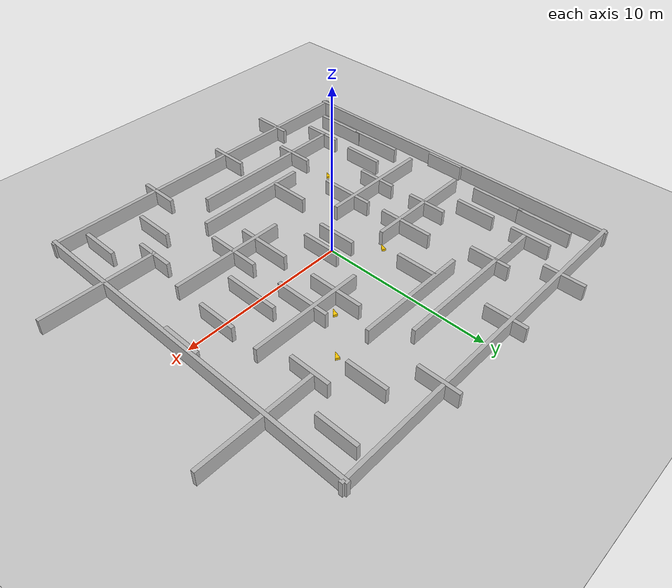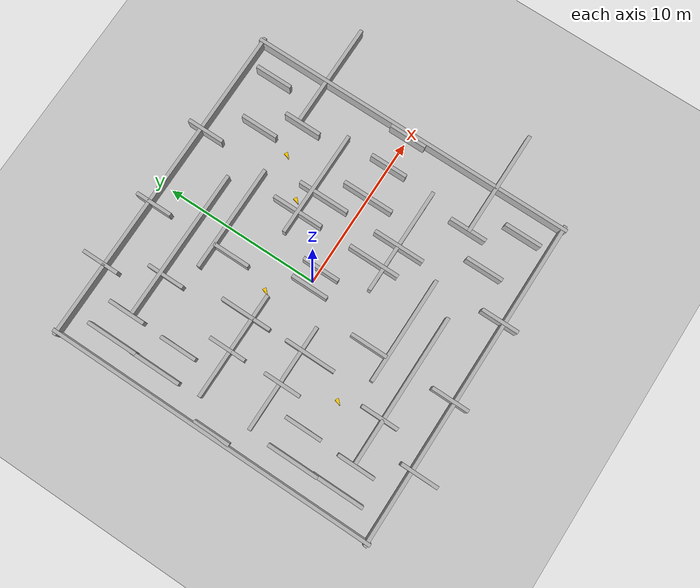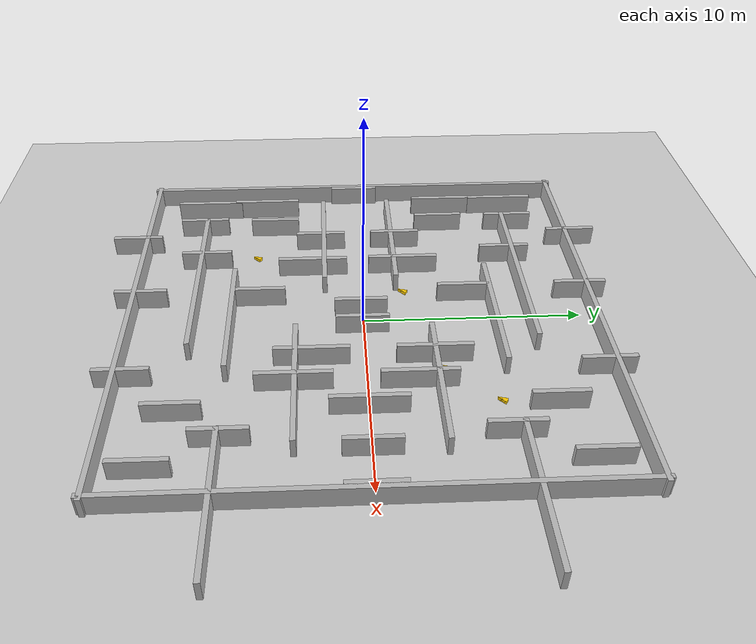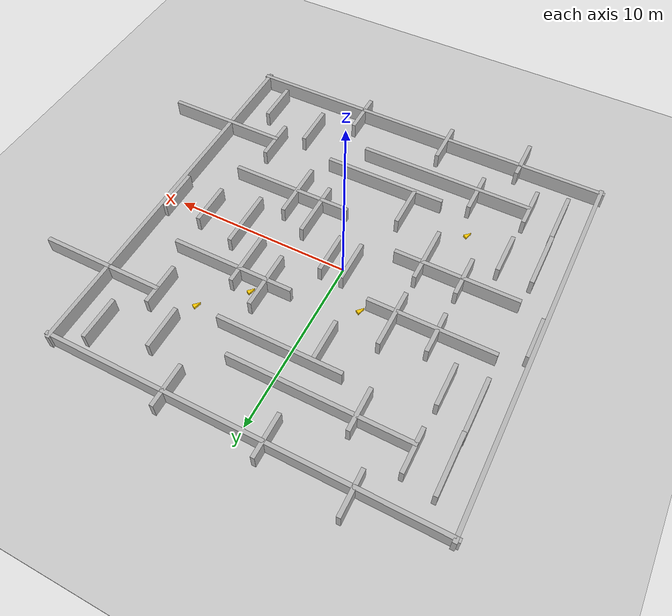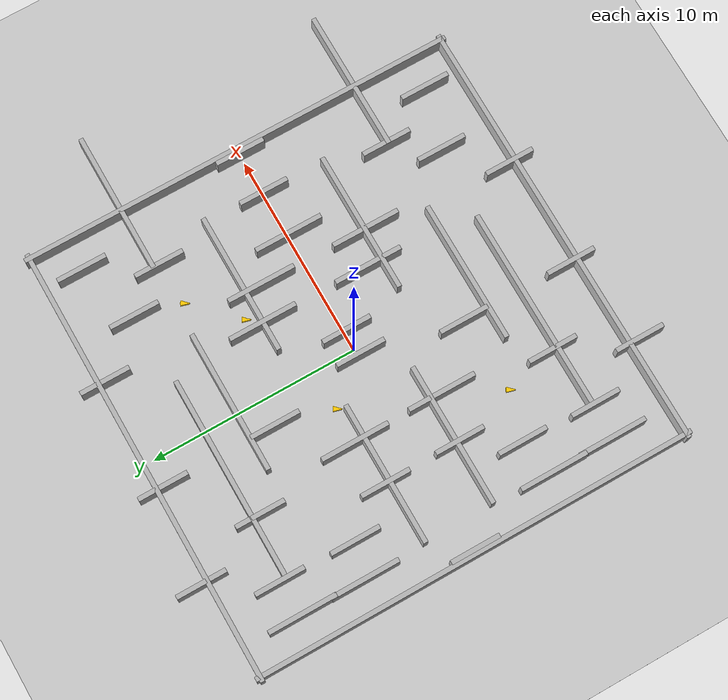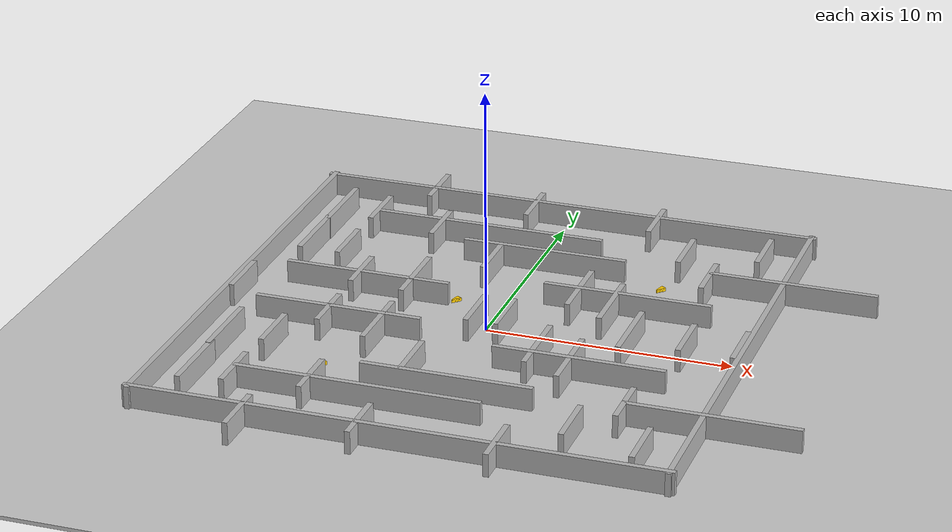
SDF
<sdf version="1.10">
  <world name="pac_mouse_maze">
    <model name="maze">
      <static>true</static>
      <scale>50 50 50</scale>
    <physics name="1ms" type="ignored">
      <max_step_size>0.001</max_step_size>
      <real_time_factor>1</real_time_factor>
      <real_time_update_rate>1000</real_time_update_rate>
    </physics>
    <plugin name="gz::sim::systems::Physics" filename="gz-sim-physics-system" />
    <plugin name="gz::sim::systems::UserCommands" filename="gz-sim-user-commands-system" />
    <plugin name="gz::sim::systems::SceneBroadcaster" filename="gz-sim-scene-broadcaster-system" />
    <plugin name="gz::sim::systems::Sensors" filename="gz-sim-sensors-system">
      <render_engine>ogre2</render_engine>
    </plugin>
    <gravity>0 0 -9.8000000000000007</gravity>
    <magnetic_field>5.5644999999999998e-06 2.2875799999999999e-05 -4.2388400000000002e-05</magnetic_field>
    <atmosphere type="adiabatic" />
    <scene>
      <ambient>0.400000006 0.400000006 0.400000006 1</ambient>
      <background>0.699999988 0.699999988 0.699999988 1</background>
      <shadows>true</shadows>
    </scene>
    <model name="ground_plane">
      <static>true</static>
      <link name="link">
        <collision name="collision">
          <geometry>
            <plane>
              <normal>0 0 1</normal>
              <size>150.0 150.0</size>
            </plane>
          </geometry>
          <surface>
            <friction>
              <ode />
            </friction>
            <bounce />
            <contact />
          </surface>
        </collision>
        <visual name="visual">
          <geometry>
            <plane>
              <normal>0 0 1</normal>
              <size>150.0 150.0</size>
            </plane>
          </geometry>
          <material>
            <ambient>0.800000012 0.800000012 0.800000012 1</ambient>
            <diffuse>0.800000012 0.800000012 0.800000012 1</diffuse>
          </material>
        </visual>
        <pose>0.0 0.0 0.0 0.0 0.0 0.0</pose>
        <inertial>
          <pose>0.0 0.0 0.0 0.0 0.0 0.0</pose>
          <mass>1</mass>
          <inertia>
            <ixx>1</ixx>
            <ixy>0</ixy>
            <ixz>0</ixz>
            <iyy>1</iyy>
            <iyz>0</iyz>
            <izz>1</izz>
          </inertia>
        </inertial>
        <enable_wind>false</enable_wind>
      </link>
      <pose>0.0 0.0 0.0 0.0 0.0 0.0</pose>
      <self_collide>false</self_collide>
    </model>
    <model name="wall_n">
      <static>true</static>
      <link name="l">
        <pose>0.0 10.5 0.5 0.0 0.0 0.0</pose>
        <collision name="c">
          <geometry>
            <box>
              <size>21.450000000000003 0.22499999999999998 1.0</size>
            </box>
          </geometry>
          <surface>
            <friction>
              <ode />
            </friction>
            <bounce />
            <contact />
          </surface>
        </collision>
        <visual name="v">
          <geometry>
            <box>
              <size>21.450000000000003 0.22499999999999998 1.0</size>
            </box>
          </geometry>
        </visual>
        <inertial>
          <pose>0.0 0.0 0.0 0.0 0.0 0.0</pose>
          <mass>1</mass>
          <inertia>
            <ixx>1</ixx>
            <ixy>0</ixy>
            <ixz>0</ixz>
            <iyy>1</iyy>
            <iyz>0</iyz>
            <izz>1</izz>
          </inertia>
        </inertial>
        <enable_wind>false</enable_wind>
      </link>
      <pose>0.0 0.0 0.0 0.0 0.0 0.0</pose>
      <self_collide>false</self_collide>
    </model>
    <model name="wall_s">
      <static>true</static>
      <link name="l">
        <pose>0.0 -10.5 0.5 0.0 0.0 0.0</pose>
        <collision name="c">
          <geometry>
            <box>
              <size>21.450000000000003 0.22499999999999998 1.0</size>
            </box>
          </geometry>
          <surface>
            <friction>
              <ode />
            </friction>
            <bounce />
            <contact />
          </surface>
        </collision>
        <visual name="v">
          <geometry>
            <box>
              <size>21.450000000000003 0.22499999999999998 1.0</size>
            </box>
          </geometry>
        </visual>
        <inertial>
          <pose>0.0 0.0 0.0 0.0 0.0 0.0</pose>
          <mass>1</mass>
          <inertia>
            <ixx>1</ixx>
            <ixy>0</ixy>
            <ixz>0</ixz>
            <iyy>1</iyy>
            <iyz>0</iyz>
            <izz>1</izz>
          </inertia>
        </inertial>
        <enable_wind>false</enable_wind>
      </link>
      <pose>0.0 0.0 0.0 0.0 0.0 0.0</pose>
      <self_collide>false</self_collide>
    </model>
    <model name="wall_e">
      <static>true</static>
      <link name="l">
        <pose>10.5 0.0 0.5 0.0 0.0 0.0</pose>
        <collision name="c">
          <geometry>
            <box>
              <size>0.22499999999999998 21.450000000000003 1.0</size>
            </box>
          </geometry>
          <surface>
            <friction>
              <ode />
            </friction>
            <bounce />
            <contact />
          </surface>
        </collision>
        <visual name="v">
          <geometry>
            <box>
              <size>0.22499999999999998 21.450000000000003 1.0</size>
            </box>
          </geometry>
        </visual>
        <inertial>
          <pose>0.0 0.0 0.0 0.0 0.0 0.0</pose>
          <mass>1</mass>
          <inertia>
            <ixx>1</ixx>
            <ixy>0</ixy>
            <ixz>0</ixz>
            <iyy>1</iyy>
            <iyz>0</iyz>
            <izz>1</izz>
          </inertia>
        </inertial>
        <enable_wind>false</enable_wind>
      </link>
      <pose>0.0 0.0 0.0 0.0 0.0 0.0</pose>
      <self_collide>false</self_collide>
    </model>
    <model name="wall_w">
      <static>true</static>
      <link name="l">
        <pose>-10.5 0.0 0.5 0.0 0.0 0.0</pose>
        <collision name="c">
          <geometry>
            <box>
              <size>0.22499999999999998 21.450000000000003 1.0</size>
            </box>
          </geometry>
          <surface>
            <friction>
              <ode />
            </friction>
            <bounce />
            <contact />
          </surface>
        </collision>
        <visual name="v">
          <geometry>
            <box>
              <size>0.22499999999999998 21.450000000000003 1.0</size>
            </box>
          </geometry>
        </visual>
        <inertial>
          <pose>0.0 0.0 0.0 0.0 0.0 0.0</pose>
          <mass>1</mass>
          <inertia>
            <ixx>1</ixx>
            <ixy>0</ixy>
            <ixz>0</ixz>
            <iyy>1</iyy>
            <iyz>0</iyz>
            <izz>1</izz>
          </inertia>
        </inertial>
        <enable_wind>false</enable_wind>
      </link>
      <pose>0.0 0.0 0.0 0.0 0.0 0.0</pose>
      <self_collide>false</self_collide>
    </model>
    <model name="center_h1">
      <static>true</static>
      <link name="l">
        <pose>0.0 1.7999999999999998 0.5 0.0 0.0 0.0</pose>
        <collision name="c">
          <geometry>
            <box>
              <size>6.8999999999999995 0.22499999999999998 1.0</size>
            </box>
          </geometry>
          <surface>
            <friction>
              <ode />
            </friction>
            <bounce />
            <contact />
          </surface>
        </collision>
        <visual name="v">
          <geometry>
            <box>
              <size>6.8999999999999995 0.22499999999999998 1.0</size>
            </box>
          </geometry>
        </visual>
        <inertial>
          <pose>0.0 0.0 0.0 0.0 0.0 0.0</pose>
          <mass>1</mass>
          <inertia>
            <ixx>1</ixx>
            <ixy>0</ixy>
            <ixz>0</ixz>
            <iyy>1</iyy>
            <iyz>0</iyz>
            <izz>1</izz>
          </inertia>
        </inertial>
        <enable_wind>false</enable_wind>
      </link>
      <pose>0.4662479907274246 4.12270724773407 0.0 0.0 0.0 0.0</pose>
      <self_collide>false</self_collide>
    </model>
    <model name="center_h2">
      <static>true</static>
      <link name="l">
        <pose>0.0 -1.7999999999999998 0.5 0.0 0.0 0.0</pose>
        <collision name="c">
          <geometry>
            <box>
              <size>6.8999999999999995 0.22499999999999998 1.0</size>
            </box>
          </geometry>
          <surface>
            <friction>
              <ode />
            </friction>
            <bounce />
            <contact />
          </surface>
        </collision>
        <visual name="v">
          <geometry>
            <box>
              <size>6.8999999999999995 0.22499999999999998 1.0</size>
            </box>
          </geometry>
        </visual>
        <inertial>
          <pose>0.0 0.0 0.0 0.0 0.0 0.0</pose>
          <mass>1</mass>
          <inertia>
            <ixx>1</ixx>
            <ixy>0</ixy>
            <ixz>0</ixz>
            <iyy>1</iyy>
            <iyz>0</iyz>
            <izz>1</izz>
          </inertia>
        </inertial>
        <enable_wind>false</enable_wind>
      </link>
      <pose>0.45819899439811707 -4.164152383804321 0.0 0.0 0.0 0.0</pose>
      <self_collide>false</self_collide>
    </model>
    <model name="mid_n1">
      <static>true</static>
      <link name="l">
        <pose>0.0 6.8999999999999995 0.5 0.0 0.0 0.0</pose>
        <collision name="c">
          <geometry>
            <box>
              <size>9.899999999999999 0.22499999999999998 1.0</size>
            </box>
          </geometry>
          <surface>
            <friction>
              <ode />
            </friction>
            <bounce />
            <contact />
          </surface>
        </collision>
        <visual name="v">
          <geometry>
            <box>
              <size>9.899999999999999 0.22499999999999998 1.0</size>
            </box>
          </geometry>
        </visual>
        <inertial>
          <pose>0.0 0.0 0.0 0.0 0.0 0.0</pose>
          <mass>1</mass>
          <inertia>
            <ixx>1</ixx>
            <ixy>0</ixy>
            <ixz>0</ixz>
            <iyy>1</iyy>
            <iyz>0</iyz>
            <izz>1</izz>
          </inertia>
        </inertial>
        <enable_wind>false</enable_wind>
      </link>
      <pose>-2.5225950479507446 0.6251951605081558 0.0 0.0 0.0 0.0</pose>
      <self_collide>false</self_collide>
    </model>
    <model name="mid_s1">
      <static>true</static>
      <link name="l">
        <pose>0.0 -6.8999999999999995 0.5 0.0 0.0 0.0</pose>
        <collision name="c">
          <geometry>
            <box>
              <size>9.899999999999999 0.22499999999999998 1.0</size>
            </box>
          </geometry>
          <surface>
            <friction>
              <ode />
            </friction>
            <bounce />
            <contact />
          </surface>
        </collision>
        <visual name="v">
          <geometry>
            <box>
              <size>9.899999999999999 0.22499999999999998 1.0</size>
            </box>
          </geometry>
        </visual>
        <inertial>
          <pose>0.0 0.0 0.0 0.0 0.0 0.0</pose>
          <mass>1</mass>
          <inertia>
            <ixx>1</ixx>
            <ixy>0</ixy>
            <ixz>0</ixz>
            <iyy>1</iyy>
            <iyz>0</iyz>
            <izz>1</izz>
          </inertia>
        </inertial>
        <enable_wind>false</enable_wind>
      </link>
      <pose>-2.497695028781891 -0.7637544572353363 0.0 0.0 0.0 0.0</pose>
      <self_collide>false</self_collide>
    </model>
    <model name="tooth_n1">
      <static>true</static>
      <link name="l">
        <pose>-1.5 4.199999999999999 0.5 0.0 0.0 0.0</pose>
        <collision name="c">
          <geometry>
            <box>
              <size>0.22499999999999998 2.4000000000000004 1.0</size>
            </box>
          </geometry>
          <surface>
            <friction>
              <ode />
            </friction>
            <bounce />
            <contact />
          </surface>
        </collision>
        <visual name="v">
          <geometry>
            <box>
              <size>0.22499999999999998 2.4000000000000004 1.0</size>
            </box>
          </geometry>
        </visual>
        <inertial>
          <pose>0.0 0.0 0.0 0.0 0.0 0.0</pose>
          <mass>1</mass>
          <inertia>
            <ixx>1</ixx>
            <ixy>0</ixy>
            <ixz>0</ixz>
            <iyy>1</iyy>
            <iyz>0</iyz>
            <izz>1</izz>
          </inertia>
        </inertial>
        <enable_wind>false</enable_wind>
      </link>
      <pose>-5.9603047370910645 0.0 0.0 0.0 0.0 0.0</pose>
      <self_collide>false</self_collide>
    </model>
    <model name="tooth_n2">
      <static>true</static>
      <link name="l">
        <pose>1.5 4.199999999999999 0.5 0.0 0.0 0.0</pose>
        <collision name="c">
          <geometry>
            <box>
              <size>0.22499999999999998 2.4000000000000004 1.0</size>
            </box>
          </geometry>
          <surface>
            <friction>
              <ode />
            </friction>
            <bounce />
            <contact />
          </surface>
        </collision>
        <visual name="v">
          <geometry>
            <box>
              <size>0.22499999999999998 2.4000000000000004 1.0</size>
            </box>
          </geometry>
        </visual>
        <inertial>
          <pose>0.0 0.0 0.0 0.0 0.0 0.0</pose>
          <mass>1</mass>
          <inertia>
            <ixx>1</ixx>
            <ixy>0</ixy>
            <ixz>0</ixz>
            <iyy>1</iyy>
            <iyz>0</iyz>
            <izz>1</izz>
          </inertia>
        </inertial>
        <enable_wind>false</enable_wind>
      </link>
      <pose>-2.8715200424194336 0.5141010135412216 0.0 0.0 0.0 0.0</pose>
      <self_collide>false</self_collide>
    </model>
    <model name="tooth_s1">
      <static>true</static>
      <link name="l">
        <pose>-1.5 -4.199999999999999 0.5 0.0 0.0 0.0</pose>
        <collision name="c">
          <geometry>
            <box>
              <size>0.22499999999999998 2.4000000000000004 1.0</size>
            </box>
          </geometry>
          <surface>
            <friction>
              <ode />
            </friction>
            <bounce />
            <contact />
          </surface>
        </collision>
        <visual name="v">
          <geometry>
            <box>
              <size>0.22499999999999998 2.4000000000000004 1.0</size>
            </box>
          </geometry>
        </visual>
        <inertial>
          <pose>0.0 0.0 0.0 0.0 0.0 0.0</pose>
          <mass>1</mass>
          <inertia>
            <ixx>1</ixx>
            <ixy>0</ixy>
            <ixz>0</ixz>
            <iyy>1</iyy>
            <iyz>0</iyz>
            <izz>1</izz>
          </inertia>
        </inertial>
        <enable_wind>false</enable_wind>
      </link>
      <pose>-5.779425859451294 0.0 0.0 0.0 0.0 0.0</pose>
      <self_collide>false</self_collide>
    </model>
    <model name="tooth_s2">
      <static>true</static>
      <link name="l">
        <pose>1.5 -4.199999999999999 0.5 0.0 0.0 0.0</pose>
        <collision name="c">
          <geometry>
            <box>
              <size>0.22499999999999998 2.4000000000000004 1.0</size>
            </box>
          </geometry>
          <surface>
            <friction>
              <ode />
            </friction>
            <bounce />
            <contact />
          </surface>
        </collision>
        <visual name="v">
          <geometry>
            <box>
              <size>0.22499999999999998 2.4000000000000004 1.0</size>
            </box>
          </geometry>
        </visual>
        <inertial>
          <pose>0.0 0.0 0.0 0.0 0.0 0.0</pose>
          <mass>1</mass>
          <inertia>
            <ixx>1</ixx>
            <ixy>0</ixy>
            <ixz>0</ixz>
            <iyy>1</iyy>
            <iyz>0</iyz>
            <izz>1</izz>
          </inertia>
        </inertial>
        <enable_wind>false</enable_wind>
      </link>
      <pose>-2.865621328353882 -0.548334002494812 0.0 0.0 0.0 0.0</pose>
      <self_collide>false</self_collide>
    </model>
    <model name="side_l1">
      <static>true</static>
      <link name="l">
        <pose>-6.8999999999999995 2.7 0.5 0.0 0.0 0.0</pose>
        <collision name="c">
          <geometry>
            <box>
              <size>0.22499999999999998 3.3000000000000003 1.0</size>
            </box>
          </geometry>
          <surface>
            <friction>
              <ode />
            </friction>
            <bounce />
            <contact />
          </surface>
        </collision>
        <visual name="v">
          <geometry>
            <box>
              <size>0.22499999999999998 3.3000000000000003 1.0</size>
            </box>
          </geometry>
        </visual>
        <inertial>
          <pose>0.0 0.0 0.0 0.0 0.0 0.0</pose>
          <mass>1</mass>
          <inertia>
            <ixx>1</ixx>
            <ixy>0</ixy>
            <ixz>0</ixz>
            <iyy>1</iyy>
            <iyz>0</iyz>
            <izz>1</izz>
          </inertia>
        </inertial>
        <enable_wind>false</enable_wind>
      </link>
      <pose>-2.167050004005432 4.965105056762695 0.017654599621891975 0.0 0.0 0.0</pose>
      <self_collide>false</self_collide>
    </model>
    <model name="side_l2">
      <static>true</static>
      <link name="l">
        <pose>-6.0 -2.7 0.5 0.0 0.0 0.0</pose>
        <collision name="c">
          <geometry>
            <box>
              <size>0.22499999999999998 3.3000000000000003 1.0</size>
            </box>
          </geometry>
          <surface>
            <friction>
              <ode />
            </friction>
            <bounce />
            <contact />
          </surface>
        </collision>
        <visual name="v">
          <geometry>
            <box>
              <size>0.22499999999999998 3.3000000000000003 1.0</size>
            </box>
          </geometry>
        </visual>
        <inertial>
          <pose>0.0 0.0 0.0 0.0 0.0 0.0</pose>
          <mass>1</mass>
          <inertia>
            <ixx>1</ixx>
            <ixy>0</ixy>
            <ixz>0</ixz>
            <iyy>1</iyy>
            <iyz>0</iyz>
            <izz>1</izz>
          </inertia>
        </inertial>
        <enable_wind>false</enable_wind>
      </link>
      <pose>2.310164988040924 0.43498049676418304 0.0 0.0 0.0 0.0</pose>
      <self_collide>false</self_collide>
    </model>

    <model name="side_l1_1">
      <static>true</static>
      <link name="l">
        <pose>-6.8999999999999995 2.7 0.5 0.0 0.0 0.0</pose>
        <collision name="c">
          <geometry>
            <box>
              <size>0.22499999999999998 3.3000000000000003 1.0</size>
            </box>
          </geometry>
          <surface>
            <friction>
              <ode />
            </friction>
            <bounce />
            <contact />
          </surface>
        </collision>
        <visual name="v">
          <geometry>
            <box>
              <size>0.22499999999999998 3.3000000000000003 1.0</size>
            </box>
          </geometry>
        </visual>
      </link>
      <pose>-2.1561883923918517 -10.358577543924401 0.0 0.0 0.0 0.0</pose>
      <self_collide>false</self_collide>
    </model>
    <model name="side_l1_2">
      <static>true</static>
      <link name="l">
        <pose>-6.8999999999999995 2.7 0.5 0.0 0.0 0.0</pose>
        <collision name="c">
          <geometry>
            <box>
              <size>0.22499999999999998 3.3000000000000003 1.0</size>
            </box>
          </geometry>
          <surface>
            <friction>
              <ode />
            </friction>
            <bounce />
            <contact />
          </surface>
        </collision>
        <visual name="v">
          <geometry>
            <box>
              <size>0.22499999999999998 3.3000000000000003 1.0</size>
            </box>
          </geometry>
        </visual>
      </link>
      <pose>-2.193284333113668 1.9472163119721007 0.017654599621891975 0.0 0.0 0.0</pose>
      <self_collide>false</self_collide>
    </model>
    <model name="side_l1_3">
      <static>true</static>
      <link name="l">
        <pose>-6.8999999999999995 2.7 0.5 0.0 0.0 0.0</pose>
        <collision name="c">
          <geometry>
            <box>
              <size>0.22499999999999998 3.3000000000000003 1.0</size>
            </box>
          </geometry>
          <surface>
            <friction>
              <ode />
            </friction>
            <bounce />
            <contact />
          </surface>
        </collision>
        <visual name="v">
          <geometry>
            <box>
              <size>0.22499999999999998 3.3000000000000003 1.0</size>
            </box>
          </geometry>
        </visual>
      </link>
      <pose>-2.187656639416893 -7.386690929343747 0.017654599621891975 0.0 0.0 0.0</pose>
      <self_collide>false</self_collide>
    </model>
    <model name="center_h1_1_1_1">
      <static>true</static>
      <link name="l">
        <pose>0.0 1.7999999999999998 0.5 0.0 0.0 0.0</pose>
        <collision name="c">
          <geometry>
            <box>
              <size>6.8999999999999995 0.22499999999999998 1.0</size>
            </box>
          </geometry>
          <surface>
            <friction>
              <ode />
            </friction>
            <bounce />
            <contact />
          </surface>
        </collision>
        <visual name="v">
          <geometry>
            <box>
              <size>6.8999999999999995 0.22499999999999998 1.0</size>
            </box>
          </geometry>
        </visual>
      </link>
      <pose>-5.597668662117223 -0.152065919390576 0.0 0.0 0.0 0.0</pose>
      <self_collide>false</self_collide>
    </model>
    <model name="center_h1_1_1_2">
      <static>true</static>
      <link name="l">
        <pose>0.0 1.7999999999999998 0.5 0.0 0.0 0.0</pose>
        <collision name="c">
          <geometry>
            <box>
              <size>6.8999999999999995 0.22499999999999998 1.0</size>
            </box>
          </geometry>
          <surface>
            <friction>
              <ode />
            </friction>
            <bounce />
            <contact />
          </surface>
        </collision>
        <visual name="v">
          <geometry>
            <box>
              <size>6.8999999999999995 0.22499999999999998 1.0</size>
            </box>
          </geometry>
        </visual>
      </link>
      <pose>-5.563494721914326 -3.5131771246707326 0.0 0.0 0.0 0.0</pose>
      <self_collide>false</self_collide>
    </model>
    <model name="tooth_s1_1">
      <static>true</static>
      <link name="l">
        <pose>-1.5 -4.199999999999999 0.5 0.0 0.0 0.0</pose>
        <collision name="c">
          <geometry>
            <box>
              <size>0.22499999999999998 2.4000000000000004 1.0</size>
            </box>
          </geometry>
          <surface>
            <friction>
              <ode />
            </friction>
            <bounce />
            <contact />
          </surface>
        </collision>
        <visual name="v">
          <geometry>
            <box>
              <size>0.22499999999999998 2.4000000000000004 1.0</size>
            </box>
          </geometry>
        </visual>
      </link>
      <pose>-4.455686560520684 6.047979663280521 0.0 0.0 0.0 0.0</pose>
      <self_collide>false</self_collide>
    </model>
    <model name="tooth_s1_2">
      <static>true</static>
      <link name="l">
        <pose>-1.5 -4.199999999999999 0.5 0.0 0.0 0.0</pose>
        <collision name="c">
          <geometry>
            <box>
              <size>0.22499999999999998 2.4000000000000004 1.0</size>
            </box>
          </geometry>
          <surface>
            <friction>
              <ode />
            </friction>
            <bounce />
            <contact />
          </surface>
        </collision>
        <visual name="v">
          <geometry>
            <box>
              <size>0.22499999999999998 2.4000000000000004 1.0</size>
            </box>
          </geometry>
        </visual>
      </link>
      <pose>-4.413097263102407 2.3365467139578966 0.0 0.0 0.0 0.0</pose>
      <self_collide>false</self_collide>
    </model>
    <model name="tooth_s1_4">
      <static>true</static>
      <link name="l">
        <pose>-1.5 -4.199999999999999 0.5 0.0 0.0 0.0</pose>
        <collision name="c">
          <geometry>
            <box>
              <size>0.22499999999999998 2.4000000000000004 1.0</size>
            </box>
          </geometry>
          <surface>
            <friction>
              <ode />
            </friction>
            <bounce />
            <contact />
          </surface>
        </collision>
        <visual name="v">
          <geometry>
            <box>
              <size>0.22499999999999998 2.4000000000000004 1.0</size>
            </box>
          </geometry>
        </visual>
      </link>
      <pose>-4.350555720885902 14.967117890884987 0.0 0.0 0.0 0.0</pose>
      <self_collide>false</self_collide>
    </model>
    <model name="tooth_s1_5">
      <static>true</static>
      <link name="l">
        <pose>-1.5 -4.199999999999999 0.5 0.0 0.0 0.0</pose>
        <collision name="c">
          <geometry>
            <box>
              <size>0.22499999999999998 2.4000000000000004 1.0</size>
            </box>
          </geometry>
          <surface>
            <friction>
              <ode />
            </friction>
            <bounce />
            <contact />
          </surface>
        </collision>
        <visual name="v">
          <geometry>
            <box>
              <size>0.22499999999999998 2.4000000000000004 1.0</size>
            </box>
          </geometry>
        </visual>
      </link>
      <pose>-2.967337073038486 11.360436544022555 0.0 0.0 0.0 0.0</pose>
      <self_collide>false</self_collide>
    </model>
    <model name="tooth_s1_6">
      <static>true</static>
      <link name="l">
        <pose>-1.5 -4.199999999999999 0.5 0.0 0.0 0.0</pose>
        <collision name="c">
          <geometry>
            <box>
              <size>0.22499999999999998 2.4000000000000004 1.0</size>
            </box>
          </geometry>
          <surface>
            <friction>
              <ode />
            </friction>
            <bounce />
            <contact />
          </surface>
        </collision>
        <visual name="v">
          <geometry>
            <box>
              <size>0.22499999999999998 2.4000000000000004 1.0</size>
            </box>
          </geometry>
        </visual>
      </link>
      <pose>-5.888817600114221 12.030808613920499 0.0 0.0 0.0 0.0</pose>
      <self_collide>false</self_collide>
    </model>
    <model name="tooth_s1_7">
      <static>true</static>
      <link name="l">
        <pose>-1.5 -4.199999999999999 0.5 0.0 0.0 0.0</pose>
        <collision name="c">
          <geometry>
            <box>
              <size>0.22499999999999998 2.4000000000000004 1.0</size>
            </box>
          </geometry>
          <surface>
            <friction>
              <ode />
            </friction>
            <bounce />
            <contact />
          </surface>
        </collision>
        <visual name="v">
          <geometry>
            <box>
              <size>0.22499999999999998 2.4000000000000004 1.0</size>
            </box>
          </geometry>
        </visual>
      </link>
      <pose>-5.901579628072101 -3.5927762607414957 0.0 0.0 0.0 0.0</pose>
      <self_collide>false</self_collide>
    </model>
    <model name="tooth_s1_8">
      <static>true</static>
      <link name="l">
        <pose>-1.5 -4.199999999999999 0.5 0.0 0.0 0.0</pose>
        <collision name="c">
          <geometry>
            <box>
              <size>0.22499999999999998 2.4000000000000004 1.0</size>
            </box>
          </geometry>
          <surface>
            <friction>
              <ode />
            </friction>
            <bounce />
            <contact />
          </surface>
        </collision>
        <visual name="v">
          <geometry>
            <box>
              <size>0.22499999999999998 2.4000000000000004 1.0</size>
            </box>
          </geometry>
        </visual>
      </link>
      <pose>-4.378215655968247 -6.785268642354341 0.0 0.0 0.0 0.0</pose>
      <self_collide>false</self_collide>
    </model>
    <model name="tooth_s1_9">
      <static>true</static>
      <link name="l">
        <pose>-1.5 -4.199999999999999 0.5 0.0 0.0 0.0</pose>
        <collision name="c">
          <geometry>
            <box>
              <size>0.22499999999999998 2.4000000000000004 1.0</size>
            </box>
          </geometry>
          <surface>
            <friction>
              <ode />
            </friction>
            <bounce />
            <contact />
          </surface>
        </collision>
        <visual name="v">
          <geometry>
            <box>
              <size>0.22499999999999998 2.4000000000000004 1.0</size>
            </box>
          </geometry>
        </visual>
      </link>
      <pose>-2.9195107570712167 -3.231144706177527 0.0 0.0 0.0 0.0</pose>
      <self_collide>false</self_collide>
    </model>
    <model name="tooth_s1_10">
      <static>true</static>
      <link name="l">
        <pose>-1.5 -4.199999999999999 0.5 0.0 0.0 0.0</pose>
        <collision name="c">
          <geometry>
            <box>
              <size>0.22499999999999998 2.4000000000000004 1.0</size>
            </box>
          </geometry>
          <surface>
            <friction>
              <ode />
            </friction>
            <bounce />
            <contact />
          </surface>
        </collision>
        <visual name="v">
          <geometry>
            <box>
              <size>0.22499999999999998 2.4000000000000004 1.0</size>
            </box>
          </geometry>
        </visual>
      </link>
      <pose>-8.815953272278293 4.148848806611834 0.0 0.0 0.0 0.0</pose>
      <self_collide>false</self_collide>
    </model>
    <model name="side_l2_1">
      <static>true</static>
      <link name="l">
        <pose>-6.0 -2.7 0.5 0.0 0.0 0.0</pose>
        <collision name="c">
          <geometry>
            <box>
              <size>0.22499999999999998 3.3000000000000003 1.0</size>
            </box>
          </geometry>
          <surface>
            <friction>
              <ode />
            </friction>
            <bounce />
            <contact />
          </surface>
        </collision>
        <visual name="v">
          <geometry>
            <box>
              <size>0.22499999999999998 3.3000000000000003 1.0</size>
            </box>
          </geometry>
        </visual>
      </link>
      <pose>2.265533036478802 4.7847701159350065 0.0 0.0 0.0 0.0</pose>
      <self_collide>false</self_collide>
    </model>
    <model name="tooth_s1_3_1">
      <static>true</static>
      <link name="l">
        <pose>-1.5 -4.199999999999999 0.5 0.0 0.0 0.0</pose>
        <collision name="c">
          <geometry>
            <box>
              <size>0.22499999999999998 2.4000000000000004 1.0</size>
            </box>
          </geometry>
          <surface>
            <friction>
              <ode />
            </friction>
            <bounce />
            <contact />
          </surface>
        </collision>
        <visual name="v">
          <geometry>
            <box>
              <size>0.22499999999999998 2.4000000000000004 1.0</size>
            </box>
          </geometry>
        </visual>
      </link>
      <pose>2.2956972571360303 4.134276382379835 0.0 0.0 0.0 0.0</pose>
      <self_collide>false</self_collide>
    </model>
    <model name="tooth_s1_3_1_1">
      <static>true</static>
      <link name="l">
        <pose>-1.5 -4.199999999999999 0.5 0.0 0.0 0.0</pose>
        <collision name="c">
          <geometry>
            <box>
              <size>0.22499999999999998 2.4000000000000004 1.0</size>
            </box>
          </geometry>
          <surface>
            <friction>
              <ode />
            </friction>
            <bounce />
            <contact />
          </surface>
        </collision>
        <visual name="v">
          <geometry>
            <box>
              <size>0.22499999999999998 2.4000000000000004 1.0</size>
            </box>
          </geometry>
        </visual>
      </link>
      <pose>1.0831803299171034 4.118926828998575 0.0 0.0 0.0 0.0</pose>
      <self_collide>false</self_collide>
    </model>
    <model name="tooth_s1_2_1">
      <static>true</static>
      <link name="l">
        <pose>-1.5 -4.199999999999999 0.5 0.0 0.0 0.0</pose>
        <collision name="c">
          <geometry>
            <box>
              <size>0.22499999999999998 2.4000000000000004 1.0</size>
            </box>
          </geometry>
          <surface>
            <friction>
              <ode />
            </friction>
            <bounce />
            <contact />
          </surface>
        </collision>
        <visual name="v">
          <geometry>
            <box>
              <size>0.22499999999999998 2.4000000000000004 1.0</size>
            </box>
          </geometry>
        </visual>
      </link>
      <pose>7.496460378240645 -3.707464860088838 0.0 0.0 0.0 0.0</pose>
      <self_collide>false</self_collide>
    </model>
    <model name="tooth_s1_2_2">
      <static>true</static>
      <link name="l">
        <pose>-1.5 -4.199999999999999 0.5 0.0 0.0 0.0</pose>
        <collision name="c">
          <geometry>
            <box>
              <size>0.22499999999999998 2.4000000000000004 1.0</size>
            </box>
          </geometry>
          <surface>
            <friction>
              <ode />
            </friction>
            <bounce />
            <contact />
          </surface>
        </collision>
        <visual name="v">
          <geometry>
            <box>
              <size>0.22499999999999998 2.4000000000000004 1.0</size>
            </box>
          </geometry>
        </visual>
      </link>
      <pose>7.453531116605184 11.888428038091142 0.0 0.0 0.0 0.0</pose>
      <self_collide>false</self_collide>
    </model>
    <model name="tooth_s1_2_3">
      <static>true</static>
      <link name="l">
        <pose>-1.5 -4.199999999999999 0.5 0.0 0.0 0.0</pose>
        <collision name="c">
          <geometry>
            <box>
              <size>0.22499999999999998 2.4000000000000004 1.0</size>
            </box>
          </geometry>
          <surface>
            <friction>
              <ode />
            </friction>
            <bounce />
            <contact />
          </surface>
        </collision>
        <visual name="v">
          <geometry>
            <box>
              <size>0.22499999999999998 2.4000000000000004 1.0</size>
            </box>
          </geometry>
        </visual>
      </link>
      <pose>5.424500946672564 -6.015795650116118 0.0 0.0 0.0 0.0</pose>
      <self_collide>false</self_collide>
    </model>
    <model name="tooth_s1_2_4">
      <static>true</static>
      <link name="l">
        <pose>-1.5 -4.199999999999999 0.5 0.0 0.0 0.0</pose>
        <collision name="c">
          <geometry>
            <box>
              <size>0.22499999999999998 2.4000000000000004 1.0</size>
            </box>
          </geometry>
          <surface>
            <friction>
              <ode />
            </friction>
            <bounce />
            <contact />
          </surface>
        </collision>
        <visual name="v">
          <geometry>
            <box>
              <size>0.22499999999999998 2.4000000000000004 1.0</size>
            </box>
          </geometry>
        </visual>
      </link>
      <pose>5.468144892548283 14.384295436120574 0.0 0.0 0.0 0.0</pose>
      <self_collide>false</self_collide>
    </model>
    <model name="center_h2_1">
      <static>true</static>
      <link name="l">
        <pose>0.0 -1.7999999999999998 0.5 0.0 0.0 0.0</pose>
        <collision name="c">
          <geometry>
            <box>
              <size>6.8999999999999995 0.22499999999999998 1.0</size>
            </box>
          </geometry>
          <surface>
            <friction>
              <ode />
            </friction>
            <bounce />
            <contact />
          </surface>
        </collision>
        <visual name="v">
          <geometry>
            <box>
              <size>6.8999999999999995 0.22499999999999998 1.0</size>
            </box>
          </geometry>
        </visual>
      </link>
      <pose>4.759047452554209 -1.2384045532692658 0.0 0.0 0.0 0.0</pose>
      <self_collide>false</self_collide>
    </model>
    <model name="center_h2_2">
      <static>true</static>
      <link name="l">
        <pose>0.0 -1.7999999999999998 0.5 0.0 0.0 0.0</pose>
        <collision name="c">
          <geometry>
            <box>
              <size>6.8999999999999995 0.22499999999999998 1.0</size>
            </box>
          </geometry>
          <surface>
            <friction>
              <ode />
            </friction>
            <bounce />
            <contact />
          </surface>
        </collision>
        <visual name="v">
          <geometry>
            <box>
              <size>6.8999999999999995 0.22499999999999998 1.0</size>
            </box>
          </geometry>
        </visual>
      </link>
      <pose>4.8932389347492045 4.746013496627534 0.0 0.0 0.0 0.0</pose>
      <self_collide>false</self_collide>
    </model>
    <model name="side_l2_1_1">
      <static>true</static>
      <link name="l">
        <pose>-6.0 -2.7 0.5 0.0 0.0 0.0</pose>
        <collision name="c">
          <geometry>
            <box>
              <size>0.22499999999999998 3.3000000000000003 1.0</size>
            </box>
          </geometry>
          <surface>
            <friction>
              <ode />
            </friction>
            <bounce />
            <contact />
          </surface>
        </collision>
        <visual name="v">
          <geometry>
            <box>
              <size>0.22499999999999998 3.3000000000000003 1.0</size>
            </box>
          </geometry>
        </visual>
      </link>
      <pose>8.875203060836164 0.35828692662183864 0.0 0.0 0.0 0.0</pose>
      <self_collide>false</self_collide>
    </model>
    <model name="side_l2_1_1_1">
      <static>true</static>
      <link name="l">
        <pose>-6.0 -2.7 0.5 0.0 0.0 0.0</pose>
        <collision name="c">
          <geometry>
            <box>
              <size>0.22499999999999998 3.3000000000000003 1.0</size>
            </box>
          </geometry>
          <surface>
            <friction>
              <ode />
            </friction>
            <bounce />
            <contact />
          </surface>
        </collision>
        <visual name="v">
          <geometry>
            <box>
              <size>0.22499999999999998 3.3000000000000003 1.0</size>
            </box>
          </geometry>
        </visual>
      </link>
      <pose>10.458213384777878 4.865614352427901 0.0 0.0 0.0 0.0</pose>
      <self_collide>false</self_collide>
    </model>
    <model name="side_l2_1_1_2">
      <static>true</static>
      <link name="l">
        <pose>-6.0 -2.7 0.5 0.0 0.0 0.0</pose>
        <collision name="c">
          <geometry>
            <box>
              <size>0.22499999999999998 3.3000000000000003 1.0</size>
            </box>
          </geometry>
          <surface>
            <friction>
              <ode />
            </friction>
            <bounce />
            <contact />
          </surface>
        </collision>
        <visual name="v">
          <geometry>
            <box>
              <size>0.22499999999999998 3.3000000000000003 1.0</size>
            </box>
          </geometry>
        </visual>
      </link>
      <pose>11.89133665985517 2.69185383634672 0.0 0.0 0.0 0.0</pose>
      <self_collide>false</self_collide>
    </model>
    <model name="side_l2_1_1_3">
      <static>true</static>
      <link name="l">
        <pose>-6.0 -2.7 0.5 0.0 0.0 0.0</pose>
        <collision name="c">
          <geometry>
            <box>
              <size>0.22499999999999998 3.3000000000000003 1.0</size>
            </box>
          </geometry>
          <surface>
            <friction>
              <ode />
            </friction>
            <bounce />
            <contact />
          </surface>
        </collision>
        <visual name="v">
          <geometry>
            <box>
              <size>0.22499999999999998 3.3000000000000003 1.0</size>
            </box>
          </geometry>
        </visual>
      </link>
      <pose>10.407117690811738 -0.3855172589206508 0.0 0.0 0.0 0.0</pose>
      <self_collide>false</self_collide>
    </model>
    <model name="ground_plane_1">
      <static>true</static>
      <link name="link">
        <collision name="collision">
          <geometry>
            <plane>
              <normal>0 0 1</normal>
              <size>150.0 150.0</size>
            </plane>
          </geometry>
          <surface>
            <friction>
              <ode />
            </friction>
            <bounce />
            <contact />
          </surface>
        </collision>
        <visual name="visual">
          <geometry>
            <plane>
              <normal>0 0 1</normal>
              <size>150.0 150.0</size>
            </plane>
          </geometry>
          <material>
            <ambient>0.800000012 0.800000012 0.800000012 1</ambient>
            <diffuse>0.800000012 0.800000012 0.800000012 1</diffuse>
          </material>
        </visual>
      </link>
      <pose>4.25915727369681 1.9306301532654537 0.0 0.0 0.0 0.0</pose>
      <self_collide>false</self_collide>
    </model>
    <model name="side_l2_1_1_1_1">
      <static>true</static>
      <link name="l">
        <pose>-6.0 -2.7 0.5 0.0 0.0 0.0</pose>
        <collision name="c">
          <geometry>
            <box>
              <size>0.22499999999999998 3.3000000000000003 1.0</size>
            </box>
          </geometry>
          <surface>
            <friction>
              <ode />
            </friction>
            <bounce />
            <contact />
          </surface>
        </collision>
        <visual name="v">
          <geometry>
            <box>
              <size>0.22499999999999998 3.3000000000000003 1.0</size>
            </box>
          </geometry>
        </visual>
      </link>
      <pose>8.904208640565706 5.648560672420938 0.0 0.0 0.0 0.0</pose>
      <self_collide>false</self_collide>
    </model>
    <model name="tooth_s1_2_1_1">
      <static>true</static>
      <link name="l">
        <pose>-1.5 -4.199999999999999 0.5 0.0 0.0 0.0</pose>
        <collision name="c">
          <geometry>
            <box>
              <size>0.22499999999999998 2.4000000000000004 1.0</size>
            </box>
          </geometry>
          <surface>
            <friction>
              <ode />
            </friction>
            <bounce />
            <contact />
          </surface>
        </collision>
        <visual name="v">
          <geometry>
            <box>
              <size>0.22499999999999998 2.4000000000000004 1.0</size>
            </box>
          </geometry>
        </visual>
      </link>
      <pose>10.422931518428182 -4.541708402325529 0.0 0.0 0.0 0.0</pose>
      <self_collide>false</self_collide>
    </model>
    <model name="tooth_s1_2_1_2">
      <static>true</static>
      <link name="l">
        <pose>-1.5 -4.199999999999999 0.5 0.0 0.0 0.0</pose>
        <collision name="c">
          <geometry>
            <box>
              <size>0.22499999999999998 2.4000000000000004 1.0</size>
            </box>
          </geometry>
          <surface>
            <friction>
              <ode />
            </friction>
            <bounce />
            <contact />
          </surface>
        </collision>
        <visual name="v">
          <geometry>
            <box>
              <size>0.22499999999999998 2.4000000000000004 1.0</size>
            </box>
          </geometry>
        </visual>
      </link>
      <pose>10.486335348823507 12.895259581638808 0.0 0.0 0.0 0.0</pose>
      <self_collide>false</self_collide>
    </model>
    <model name="tooth_s1_2_1_3">
      <static>true</static>
      <link name="l">
        <pose>-1.5 -4.199999999999999 0.5 0.0 0.0 0.0</pose>
        <collision name="c">
          <geometry>
            <box>
              <size>0.22499999999999998 2.4000000000000004 1.0</size>
            </box>
          </geometry>
          <surface>
            <friction>
              <ode />
            </friction>
            <bounce />
            <contact />
          </surface>
        </collision>
        <visual name="v">
          <geometry>
            <box>
              <size>0.22499999999999998 2.4000000000000004 1.0</size>
            </box>
          </geometry>
        </visual>
      </link>
      <pose>9.640564466183319 4.202186122183826 0.0 0.0 0.0 0.0</pose>
      <self_collide>false</self_collide>
    </model>
    <model name="tooth_s1_3_1_2">
      <static>true</static>
      <link name="l">
        <pose>-1.5 -4.199999999999999 0.5 0.0 0.0 0.0</pose>
        <collision name="c">
          <geometry>
            <box>
              <size>0.22499999999999998 2.4000000000000004 1.0</size>
            </box>
          </geometry>
          <surface>
            <friction>
              <ode />
            </friction>
            <bounce />
            <contact />
          </surface>
        </collision>
        <visual name="v">
          <geometry>
            <box>
              <size>0.22499999999999998 2.4000000000000004 1.0</size>
            </box>
          </geometry>
        </visual>
      </link>
      <pose>11.79403566993456 4.215575066686662 0.0 0.0 0.0 0.0</pose>
      <self_collide>false</self_collide>
    </model>
    <model name="center_h2_3">
      <static>true</static>
      <link name="l">
        <pose>0.0 -1.7999999999999998 0.5 0.0 0.0 0.0</pose>
        <collision name="c">
          <geometry>
            <box>
              <size>6.8999999999999995 0.22499999999999998 1.0</size>
            </box>
          </geometry>
          <surface>
            <friction>
              <ode />
            </friction>
            <bounce />
            <contact />
          </surface>
        </collision>
        <visual name="v">
          <geometry>
            <box>
              <size>6.8999999999999995 0.22499999999999998 1.0</size>
            </box>
          </geometry>
        </visual>
      </link>
      <pose>10.788366015831786 -4.1765368515908134 0.0 0.0 0.0 0.0</pose>
      <self_collide>false</self_collide>
    </model>
    <model name="center_h2_3_1">
      <static>true</static>
      <link name="l">
        <pose>0.0 -1.7999999999999998 0.5 0.0 0.0 0.0</pose>
        <collision name="c">
          <geometry>
            <box>
              <size>6.8999999999999995 0.22499999999999998 1.0</size>
            </box>
          </geometry>
          <surface>
            <friction>
              <ode />
            </friction>
            <bounce />
            <contact />
          </surface>
        </collision>
        <visual name="v">
          <geometry>
            <box>
              <size>6.8999999999999995 0.22499999999999998 1.0</size>
            </box>
          </geometry>
        </visual>
      </link>
      <pose>10.885942032157919 7.725247229137224 0.0 0.0 0.0 0.0</pose>
      <self_collide>false</self_collide>
    </model>
    <model name="tooth_s1_2_1_3_1">
      <static>true</static>
      <link name="l">
        <pose>-1.5 -4.199999999999999 0.5 0.0 0.0 0.0</pose>
        <collision name="c">
          <geometry>
            <box>
              <size>0.22499999999999998 2.4000000000000004 1.0</size>
            </box>
          </geometry>
          <surface>
            <friction>
              <ode />
            </friction>
            <bounce />
            <contact />
          </surface>
        </collision>
        <visual name="v">
          <geometry>
            <box>
              <size>0.22499999999999998 2.4000000000000004 1.0</size>
            </box>
          </geometry>
        </visual>
      </link>
      <pose>8.946004690854393 -1.6997788884370473 0.0 0.0 0.0 0.0</pose>
      <self_collide>false</self_collide>
    </model>
    <model name="tooth_s1_2_1_3_2">
      <static>true</static>
      <link name="l">
        <pose>-1.5 -4.199999999999999 0.5 0.0 0.0 0.0</pose>
        <collision name="c">
          <geometry>
            <box>
              <size>0.22499999999999998 2.4000000000000004 1.0</size>
            </box>
          </geometry>
          <surface>
            <friction>
              <ode />
            </friction>
            <bounce />
            <contact />
          </surface>
        </collision>
        <visual name="v">
          <geometry>
            <box>
              <size>0.22499999999999998 2.4000000000000004 1.0</size>
            </box>
          </geometry>
        </visual>
      </link>
      <pose>8.985683560023306 9.836437623286251 0.0 0.0 0.0 0.0</pose>
      <self_collide>false</self_collide>
    </model>
    <model name="tooth_s1_4_1">
      <static>true</static>
      <link name="l">
        <pose>-1.5 -4.199999999999999 0.5 0.0 0.0 0.0</pose>
        <collision name="c">
          <geometry>
            <box>
              <size>0.22499999999999998 2.4000000000000004 1.0</size>
            </box>
          </geometry>
          <surface>
            <friction>
              <ode />
            </friction>
            <bounce />
            <contact />
          </surface>
        </collision>
        <visual name="v">
          <geometry>
            <box>
              <size>0.22499999999999998 2.4000000000000004 1.0</size>
            </box>
          </geometry>
        </visual>
      </link>
      <pose>0.14029130318577243 14.393103772632054 0.0 0.0 0.0 0.0</pose>
      <self_collide>false</self_collide>
    </model>
    <model name="tooth_s1_4_2">
      <static>true</static>
      <link name="l">
        <pose>-1.5 -4.199999999999999 0.5 0.0 0.0 0.0</pose>
        <collision name="c">
          <geometry>
            <box>
              <size>0.22499999999999998 2.4000000000000004 1.0</size>
            </box>
          </geometry>
          <surface>
            <friction>
              <ode />
            </friction>
            <bounce />
            <contact />
          </surface>
        </collision>
        <visual name="v">
          <geometry>
            <box>
              <size>0.22499999999999998 2.4000000000000004 1.0</size>
            </box>
          </geometry>
        </visual>
      </link>
      <pose>0.10350067730376633 -5.996353845230133 0.0 0.0 0.0 0.0</pose>
      <self_collide>false</self_collide>
    </model>
    <light name="sun" type="directional">
      <pose>0.0 0.0 10.0 0.0 0.0 0.0</pose>
      <cast_shadows>true</cast_shadows>
      <intensity>1</intensity>
      <direction>-0.5 0.10000000000000001 -0.90000000000000002</direction>
      <diffuse>0.800000012 0.800000012 0.800000012 1</diffuse>
      <specular>0.200000003 0.200000003 0.200000003 1</specular>
      <attenuation>
        <range>10</range>
        <linear>1</linear>
        <constant>1</constant>
        <quadratic>0</quadratic>
      </attenuation>
      <spot>
        <inner_angle>0</inner_angle>
        <outer_angle>0</outer_angle>
        <falloff>0</falloff>
      </spot>
    </light>
    </model>
    <include>
        <uri>model://cheese_triangle</uri>
        <name>cheese_1</name>
        <pose>3.5 3.5 0.05 0 0 0.78</pose>
    </include>

    <include>
        <uri>model://cheese_triangle</uri>
        <name>cheese_2</name>
        <pose>-2.0 2.0 0.05 0 0 0.78</pose>
    </include>

    <include>
        <uri>model://cheese_triangle</uri>
        <name>cheese_3</name>
        <pose>5.5 5.5 0.05 0 0 0.78</pose>
    </include>

    <include>
        <uri>model://cheese_triangle</uri>
        <name>cheese_4</name>
        <pose>-5.0 -5.0 0.05 0 0 0.78</pose>
    </include>
  </world>
</sdf>

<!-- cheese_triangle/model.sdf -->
<sdf version="1.6">
  <model name="cheese_triangle">
    <static>false</static> <link name="link">

      <inertial>
        <mass>0.1</mass> <inertia>
          <ixx>0.0001</ixx>
          <ixy>0</ixy>
          <ixz>0</ixz>
          <iyy>0.0001</iyy>
          <iyz>0</iyz>
          <izz>0.0001</izz>
        </inertia>
      </inertial>

      <collision name="collision">
        <pose>0 0 0.2 0 0 0</pose>

        <geometry>
          <box>
            <size>0.15 0.15 0.50</size>
          </box>
        </geometry>
      </collision>

      <visual name="visual">
      <pose>0 0 -0.05 1.57 0 0</pose>
        <geometry>
          <mesh>
            <uri>model://cheese_triangle/meshes/cheese_triangle.obj</uri>
            <scale>3 3 3</scale> </mesh>
        </geometry>
        <material>
          <ambient>1 0.8 0 1</ambient>
          <diffuse>1 0.8 0 1</diffuse>
          <specular>0.1 0.1 0.1 1</specular>
        </material>
      </visual>

    </link>
  </model>
</sdf>
